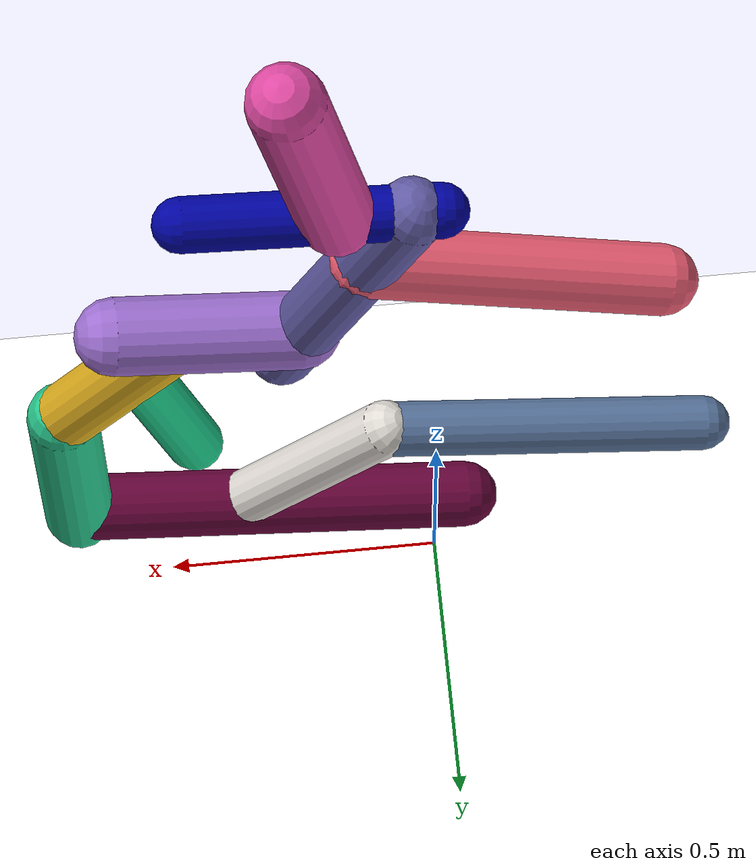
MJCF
<mujoco model="morphology">
    <option timestep="0.01" />
    <default>
        <default class="/" />
        <default class="0/" />
        <default class="0/1/" />
        <default class="0/2/" />
        <default class="0/2/3/" />
        <default class="0/2/4/" />
        <default class="0/2/4/5/" />
        <default class="0/2/4/5/6/" />
        <default class="0/2/4/5/7/" />
        <default class="0/2/4/5/7/8/" />
        <default class="0/2/4/5/7/8/9/" />
        <default class="0/2/4/5/7/8/9/10/" />
    </default>
    <asset>
        <texture name="texplane" type="2d" builtin="checker"
            rgb1="0.10000000000000001 0.20000000000000001 0.29999999999999999"
            rgb2="0.20000000000000001 0.29999999999999999 0.40000000000000002" width="300"
            height="300" />
        <material name="MatPlane" class="/" texture="texplane" texrepeat="20 20" specular="1.0"
            shininess="1.0" reflectance="0.5" />
    </asset>
    <worldbody>
        <light name="//unnamed_light_0" class="/" directional="true" pos="0 0 1.5" dir="0 0 -1.3"
            cutoff="100.0" exponent="1.0" diffuse="1 1 1"
            specular="0.10000000000000001 0.10000000000000001 0.10000000000000001" />
        <geom name="ground" class="/" type="plane" size="15 15 0.5" material="MatPlane"
            rgba="1 1 1 1" />
        <site name="body" class="/"
            size="9.9999999999999995e-07 9.9999999999999995e-07 9.9999999999999995e-07"
            pos="0 0 1.6446825361251831" />
        <body pos="0 0 1.6446825361251831" name="0/">
            <joint name="0/rootx/" class="/" type="slide" axis="1 0 0" stiffness="0.0"
                armature="0.0" damping="0.0" />
            <joint name="0/rootz/" class="/" type="slide" axis="0 0 1" stiffness="0.0"
                armature="0.0" damping="0.0" />
            <joint name="0/rooty/" class="/" type="hinge" axis="0 1 0" stiffness="0.0"
                armature="0.0" damping="0.0" />
            <geom name="0/geom" class="0/" type="capsule" contype="1" conaffinity="1" condim="3"
                size="0.048470334428519793"
                rgba="0.00033081932194189978 0.012455012886624872 0.63742753509390848 1"
                friction="0.59999999999999998 0.10000000000000001 0.10000000000000001"
                fromto="0 0 0 0.43986990955996008 0 0.037582513527956607" />
            <site name="0/end0" class="0/" size="0.0050000000000000001"
                pos="0.43986990955996008 0 0.037582513527956607" />
            <site name="0/attach1" class="0/"
                size="9.9999999999999995e-07 9.9999999999999995e-07 9.9999999999999995e-07"
                pos="0.17738829841916118 0 0.015156067692169723" />
            <body pos="0.17738829841916118 0 0.015156067692169723" name="0/1/">
                <joint name="0/1/joint/" class="0/" type="hinge" axis="0 1 0" limited="true"
                    stiffness="100.0" range="-59.967968634045079 59.967968634045079" armature="0.2"
                    damping="3.5" />
                <geom name="0/1/geom" class="0/1/" type="capsule" contype="1" conaffinity="1"
                    condim="3" size="0.06845958618526804"
                    rgba="0.87108043698540449 0.28535127249538017 0.63559308946676174 1"
                    friction="0.59999999999999998 0.10000000000000001 0.10000000000000001"
                    fromto="0 0 0 0.078363312647046768 0 0.48536182802937633" />
                <site name="0/1/end1" class="0/1/" size="0.0050000000000000001"
                    pos="0.078363312647046768 0 0.48536182802937633" />
            </body>
            <site name="0/attach2" class="0/"
                size="9.9999999999999995e-07 9.9999999999999995e-07 9.9999999999999995e-07"
                pos="0.049972686477538997 0 0.0042696695653705171" />
            <body pos="0.049972686477538997 0 0.0042696695653705171" name="0/2/">
                <geom name="0/2/geom" class="0/2/" type="capsule" contype="1" conaffinity="1"
                    condim="3" size="0.061582705385352127"
                    rgba="0.38364079381896388 0.36142282893249611 0.64819929378094321 1"
                    friction="0.59999999999999998 0.10000000000000001 0.10000000000000001"
                    fromto="0 0 0 0.22686783030327318 0 -0.57716451326855656" />
                <site name="0/2/end2" class="0/2/" size="0.0050000000000000001"
                    pos="0.22686783030327318 0 -0.57716451326855656" />
                <site name="0/2/attach3" class="0/2/"
                    size="9.9999999999999995e-07 9.9999999999999995e-07 9.9999999999999995e-07"
                    pos="0.078730536243448446 0 -0.20029490990229112" />
                <body pos="0.078730536243448446 0 -0.20029490990229112" name="0/2/3/">
                    <joint name="0/2/3/joint/" class="0/2/" type="hinge" axis="0 1 0" limited="true"
                        stiffness="100.0" range="-54.477055309290478 54.477055309290478"
                        armature="0.2" damping="3.5" />
                    <geom name="0/2/3/geom" class="0/2/3/" type="capsule" contype="1"
                        conaffinity="1" condim="3" size="0.063611005932166856"
                        rgba="0.95500026637347413 0.37561256668505105 0.46587947609537039 1"
                        friction="0.59999999999999998 0.10000000000000001 0.10000000000000001"
                        fromto="0 0 0 -0.51610147707469145 0 -0.20343566848311156" />
                    <site name="0/2/3/end3" class="0/2/3/" size="0.0050000000000000001"
                        pos="-0.51610147707469145 0 -0.20343566848311156" />
                </body>
                <site name="0/2/attach4" class="0/2/"
                    size="9.9999999999999995e-07 9.9999999999999995e-07 9.9999999999999995e-07"
                    pos="0.19179373702408911 0 -0.48793404833769782" />
                <body pos="0.19179373702408911 0 -0.48793404833769782" name="0/2/4/">
                    <joint name="0/2/4/joint/" class="0/2/" type="hinge" axis="0 1 0" limited="true"
                        stiffness="100.0" range="-50.312953226334692 50.312953226334692"
                        armature="0.2" damping="3.5" />
                    <geom name="0/2/4/geom" class="0/2/4/" type="capsule" contype="1"
                        conaffinity="1" condim="3" size="0.06956648561455929"
                        rgba="0.61832256008433895 0.4383670866395698 0.82176826214769838 1"
                        friction="0.59999999999999998 0.10000000000000001 0.10000000000000001"
                        fromto="0 0 0 0.32782934880180647 0 0.047219382589938186" />
                    <site name="0/2/4/end4" class="0/2/4/" size="0.0050000000000000001"
                        pos="0.32782934880180647 0 0.047219382589938186" />
                    <site name="0/2/4/attach5" class="0/2/4/"
                        size="9.9999999999999995e-07 9.9999999999999995e-07 9.9999999999999995e-07"
                        pos="0.20864071770079753 0 0.030051872747089932" />
                    <body pos="0.20864071770079753 0 0.030051872747089932" name="0/2/4/5/">
                        <joint name="0/2/4/5/joint/" class="0/2/4/" type="hinge" axis="0 1 0"
                            limited="true" stiffness="100.0"
                            range="-54.620947907197291 54.620947907197291" armature="0.2"
                            damping="3.5" />
                        <geom name="0/2/4/5/geom" class="0/2/4/5/" type="capsule" contype="1"
                            conaffinity="1" condim="3" size="0.05975953546328968"
                            rgba="0.88963175028080188 0.69328094092321402 0.11831577696138063 1"
                            friction="0.59999999999999998 0.10000000000000001 0.10000000000000001"
                            fromto="0 0 0 0.22541791086605245 0 -0.35123265249488272" />
                        <site name="0/2/4/5/end5" class="0/2/4/5/" size="0.0050000000000000001"
                            pos="0.22541791086605245 0 -0.35123265249488272" />
                        <site name="0/2/4/5/attach6" class="0/2/4/5/"
                            size="9.9999999999999995e-07 9.9999999999999995e-07 9.9999999999999995e-07"
                            pos="0.089124096798619004 0 -0.13886781578057761" />
                        <body pos="0.089124096798619004 0 -0.13886781578057761" name="0/2/4/5/6/">
                            <geom name="0/2/4/5/6/geom" class="0/2/4/5/6/" type="capsule"
                                contype="1" conaffinity="1" condim="3" size="0.051737885817285112"
                                rgba="0.11618861934138636 0.81285965828828988 0.55948520942669355 1"
                                friction="0.59999999999999998 0.10000000000000001 0.10000000000000001"
                                fromto="0 0 0 -0.097684826161392624 0 -0.39298979059815292" />
                            <site name="0/2/4/5/6/end6" class="0/2/4/5/6/"
                                size="0.0050000000000000001"
                                pos="-0.097684826161392624 0 -0.39298979059815292" />
                        </body>
                        <site name="0/2/4/5/attach7" class="0/2/4/5/"
                            size="9.9999999999999995e-07 9.9999999999999995e-07 9.9999999999999995e-07"
                            pos="0.22441438273133799 0 -0.34966901521666111" />
                        <body pos="0.22441438273133799 0 -0.34966901521666111" name="0/2/4/5/7/">
                            <joint name="0/2/4/5/7/joint/" class="0/2/4/5/" type="hinge"
                                axis="0 1 0" limited="true" stiffness="100.0"
                                range="-44.105755982147251 44.105755982147251" armature="0.2"
                                damping="3.5" />
                            <geom name="0/2/4/5/7/geom" class="0/2/4/5/7/" type="capsule"
                                contype="1" conaffinity="1" condim="3" size="0.064304713105706443"
                                rgba="0.15207374561845899 0.7712993837302069 0.54680997219123217 1"
                                friction="0.59999999999999998 0.10000000000000001 0.10000000000000001"
                                fromto="0 0 0 -0.0096037781729683136 0 -0.50098565253040839" />
                            <site name="0/2/4/5/7/end7" class="0/2/4/5/7/"
                                size="0.0050000000000000001"
                                pos="-0.0096037781729683136 0 -0.50098565253040839" />
                            <site name="0/2/4/5/7/attach8" class="0/2/4/5/7/"
                                size="9.9999999999999995e-07 9.9999999999999995e-07 9.9999999999999995e-07"
                                pos="-0.008976895277678509 0 -0.46828400837530965" />
                            <body pos="-0.008976895277678509 0 -0.46828400837530965"
                                name="0/2/4/5/7/8/">
                                <joint name="0/2/4/5/7/8/joint/" class="0/2/4/5/7/" type="hinge"
                                    axis="0 1 0" limited="true" stiffness="100.0"
                                    range="-54.620289978094419 54.620289978094419" armature="0.2"
                                    damping="3.5" />
                                <geom name="0/2/4/5/7/8/geom" class="0/2/4/5/7/8/" type="capsule"
                                    contype="1" conaffinity="1" condim="3"
                                    size="0.061583098361933424"
                                    rgba="0.41205131522094041 0.020053196940403972 0.23571777029808849 1"
                                    friction="0.59999999999999998 0.10000000000000001 0.10000000000000001"
                                    fromto="0 0 0 -0.71959874333505525 0 -0.11311697515913055" />
                                <site name="0/2/4/5/7/8/end8" class="0/2/4/5/7/8/"
                                    size="0.0050000000000000001"
                                    pos="-0.71959874333505525 0 -0.11311697515913055" />
                                <site name="0/2/4/5/7/8/attach9" class="0/2/4/5/7/8/"
                                    size="9.9999999999999995e-07 9.9999999999999995e-07 9.9999999999999995e-07"
                                    pos="-0.29355349280713355 0 -0.046144998808425396" />
                                <body pos="-0.29355349280713355 0 -0.046144998808425396"
                                    name="0/2/4/5/7/8/9/">
                                    <geom name="0/2/4/5/7/8/9/geom" class="0/2/4/5/7/8/9/"
                                        type="capsule" contype="1" conaffinity="1" condim="3"
                                        size="0.052537672168804728"
                                        rgba="0.87866677169540308 0.85854947377697333 0.83354651015938253 1"
                                        friction="0.59999999999999998 0.10000000000000001 0.10000000000000001"
                                        fromto="0 0 0 -0.27768796286893449 0 0.31377529404286086" />
                                    <site name="0/2/4/5/7/8/9/end9" class="0/2/4/5/7/8/9/"
                                        size="0.0050000000000000001"
                                        pos="-0.27768796286893449 0 0.31377529404286086" />
                                    <site name="0/2/4/5/7/8/9/attach10" class="0/2/4/5/7/8/9/"
                                        size="9.9999999999999995e-07 9.9999999999999995e-07 9.9999999999999995e-07"
                                        pos="-0.27478744671075639 0 0.31049783721323965" />
                                    <body pos="-0.27478744671075639 0 0.31049783721323965"
                                        name="0/2/4/5/7/8/9/10/">
                                        <joint name="0/2/4/5/7/8/9/10/joint/" class="0/2/4/5/7/8/9/"
                                            type="hinge" axis="0 1 0" limited="true"
                                            stiffness="100.0"
                                            range="-35.52298876556317 35.52298876556317"
                                            armature="0.2" damping="3.5" />
                                        <geom name="0/2/4/5/7/8/9/10/geom" class="0/2/4/5/7/8/9/10/"
                                            type="capsule" contype="1" conaffinity="1" condim="3"
                                            size="0.050449174825964074"
                                            rgba="0.34607658868847457 0.45982941709285918 0.6189263619638079 1"
                                            friction="0.59999999999999998 0.10000000000000001 0.10000000000000001"
                                            fromto="0 0 0 -0.58847350787991193 0 -0.11424469735842491" />
                                        <site name="0/2/4/5/7/8/9/10/end10"
                                            class="0/2/4/5/7/8/9/10/" size="0.0050000000000000001"
                                            pos="-0.58847350787991193 0 -0.11424469735842491" />
                                    </body>
                                </body>
                            </body>
                        </body>
                    </body>
                </body>
            </body>
        </body>
    </worldbody>
    <actuator>
    </actuator>
    <sensor>
        <subtreelinvel name="velocity" body="0/" />
    </sensor>
</mujoco>
